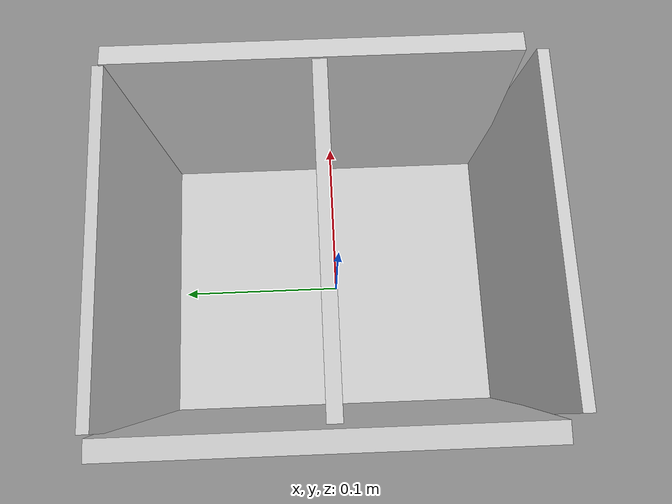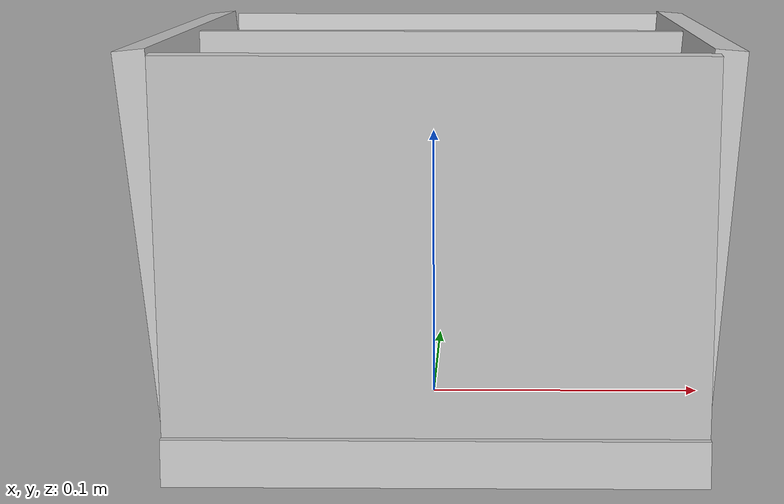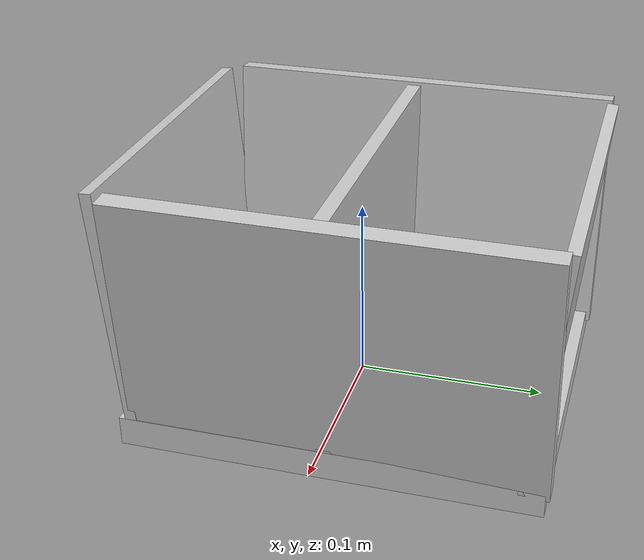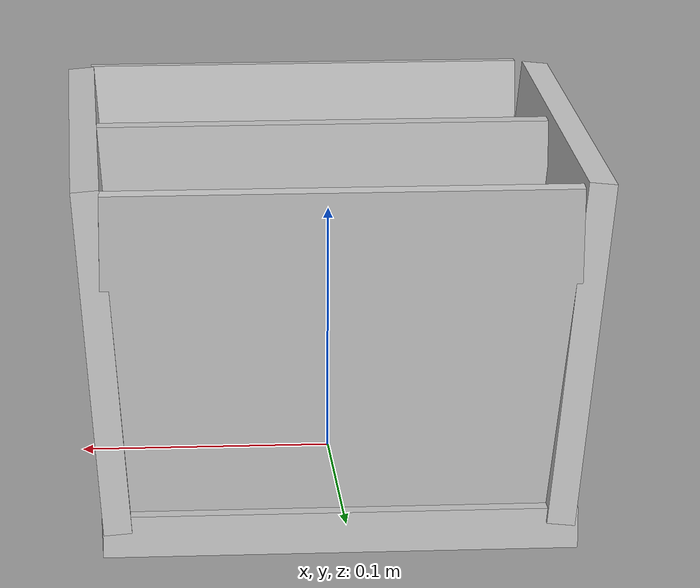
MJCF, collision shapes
<mujoco model="bowl_drainer">
  <asset>
  <texture file="ceramic.png" name="tex-bowl_drainer" type="2d" />
  <material name="bowl_drainer" reflectance="0.5" texrepeat="1 1" texture="tex-bowl_drainer" texuniform="false" />
  <mesh file="visual/bowl_drainer_vis.msh" name="bowl_drainer_vis" scale="0.008 0.008 0.008" /></asset>
  <worldbody>
    <body>
      <body name="object">
      <geom solimp="0.998 0.998 0.001" solref="0.001 1" density="100"
	    friction="0.95 0.3 0.1" type="mesh"
	    mesh="bowl_drainer_vis" conaffinity="0" contype="0"
	    group="1" material="bowl_drainer" />
      <site name="left_region" type="box" pos="-0.00000 0.06211 0.06757" quat="0.50000 0.50000 -0.50000 -0.50000" size="0.05165 0.05808 0.09423" group="0" rgba="0 0 0.8 0"/>
      <site name="right_region" type="box" pos="-0.00000 -0.05153 0.06757" quat="0.50000 0.50000 -0.50000 -0.50000" size="0.05165 0.05808 0.09423" group="0" rgba="0.8 0 0 0"/>
      <geom solimp="0.998 0.998 0.001" solref="0.001 1" density="100" friction="0.95 0.3 0.1" type="mesh" mesh="bowl_drainer_vis" conaffinity="0" contype="0" group="1" material="bowl_drainer" /><geom solimp="0.998 0.998 0.001" solref="0.001 1" density="100" friction="0.95 0.3 0.1" type="box" pos="0.00303 0.00581 0.00198" quat="0.50000 -0.50000 0.50000 0.50000" size="0.00800 0.09053 0.11000" group="0" rgba="0.8 0.8 0.8 0.3" /><geom solimp="0.998 0.998 0.001" solref="0.001 1" density="100" friction="0.95 0.3 0.1" type="box" pos="0.00303 0.11202 0.07075" quat="0.52374 0.47507 -0.52374 -0.47507" size="0.00314 0.06637 0.09053" group="0" rgba="0.8 0.8 0.8 0.3" /><geom solimp="0.998 0.998 0.001" solref="0.001 1" density="100" friction="0.95 0.3 0.1" type="box" pos="0.00303 -0.10249 0.07075" quat="0.51943 -0.47979 -0.51943 0.47979" size="0.00314 0.06629 0.09053" group="0" rgba="0.8 0.8 0.8 0.3" /><geom solimp="0.998 0.998 0.001" solref="0.001 1" density="100" friction="0.95 0.3 0.1" type="box" pos="0.09288 0.00961 0.07075" quat="0.70650 0.70660 0.02683 -0.02923" size="0.00540 0.06709 0.10835" group="0" rgba="0.8 0.8 0.8 0.3" /><geom solimp="0.998 0.998 0.001" solref="0.001 1" density="100" friction="0.95 0.3 0.1" type="box" pos="-0.08799 0.00961 0.07075" quat="0.03549 0.03787 0.70631 -0.70600" size="0.00540 0.06709 0.10835" group="0" rgba="0.8 0.8 0.8 0.3" /><geom solimp="0.998 0.998 0.001" solref="0.001 1" density="100" friction="0.95 0.3 0.1" type="box" pos="0.00303 0.00588 0.07075" quat="0.50096 0.49904 -0.50096 -0.49904" size="0.00386 0.06613 0.09053" group="0" rgba="0.8 0.8 0.8 0.3" />
      </body>
      <site rgba="0 0 0 0" size="0.005" pos="0 0 -0.06" name="bottom_site" />
      <site rgba="0 0 0 0" size="0.005" pos="0 0 0.04" name="top_site" />
      <site rgba="0 0 0 0" size="0.005" pos="0.025 0.025 0" name="horizontal_radius_site" />
    </body>
  </worldbody>
</mujoco>
